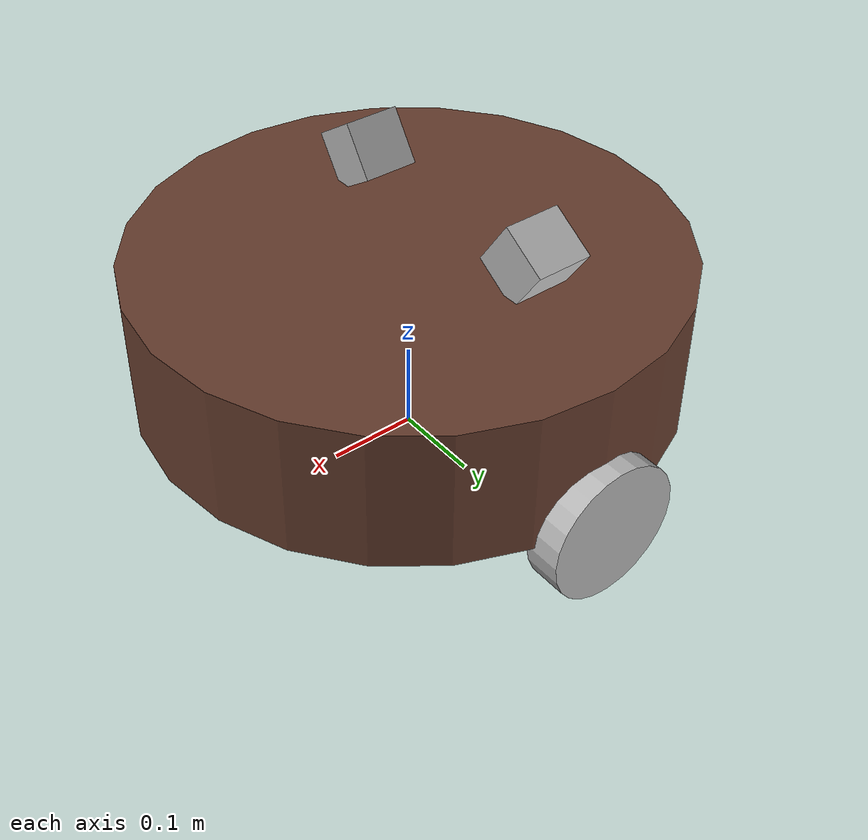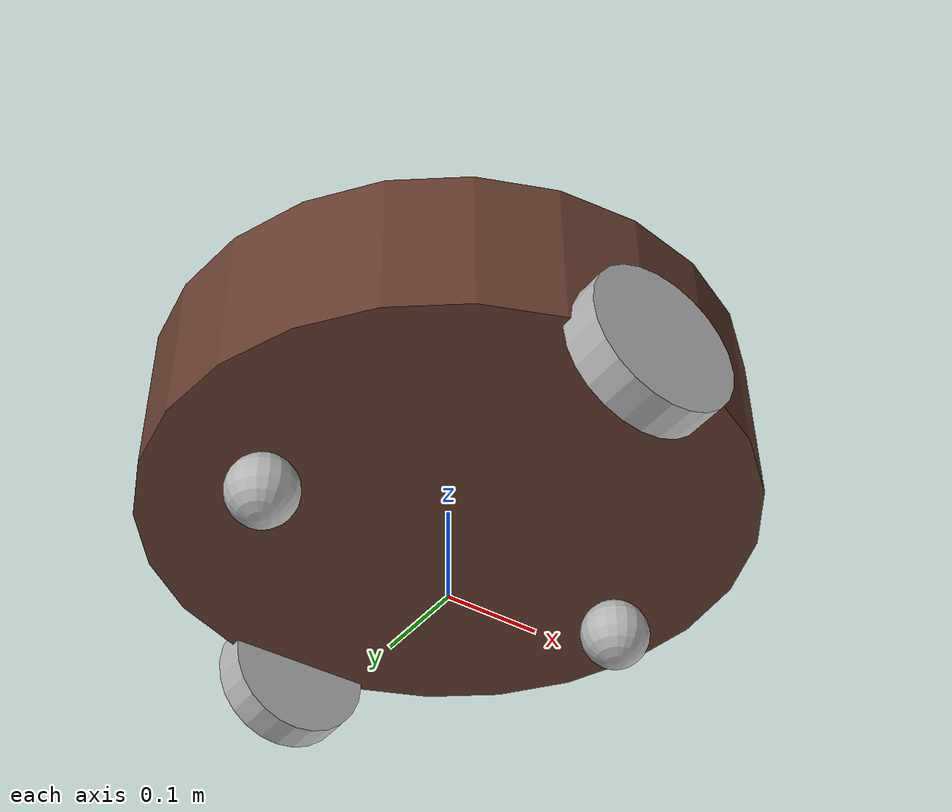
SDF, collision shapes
<?xml version="1.0"?>
<sdf version="1.7">
  <model name="sentry">
    <self_collide>false</self_collide>

    <link name="base_link">
      <pose>0 0 0.16 0 0 0</pose>
      <inertial>
        <mass>35.0</mass>
        <inertia><ixx>0.904167</ixx><iyy>0.904167</iyy><izz>1.575</izz></inertia>
      </inertial>
      <collision name="base_collision">
        <geometry><cylinder><radius>0.3</radius><length>0.16</length></cylinder></geometry>
        <surface>
          <friction><ode><mu>0.8</mu><mu2>0.8</mu2></ode></friction>
          <contact><ode><kp>1000000</kp><kd>100</kd></ode></contact>
        </surface>
      </collision>
      <visual name="base_visual">
        <geometry><cylinder><radius>0.3</radius><length>0.16</length></cylinder></geometry>
        <material><ambient>0.26 0.18 0.14 1</ambient><diffuse>0.40 0.24 0.18 1</diffuse></material>
      </visual>
    </link>

    <link name="left_wheel">
      <pose>0 0.30 0.076 -1.57079632679 0 0</pose>
      <inertial><mass>0.8</mass><inertia><ixx>0.001262</ixx><iyy>0.001262</iyy><izz>0.002310</izz></inertia></inertial>
      <collision name="collision">
        <geometry><cylinder><radius>0.076</radius><length>0.04</length></cylinder></geometry>
        <surface><friction><ode><mu>1.2</mu><mu2>1.2</mu2></ode></friction></surface>
      </collision>
      <visual name="visual"><geometry><cylinder><radius>0.076</radius><length>0.04</length></cylinder></geometry></visual>
    </link>
    <link name="right_wheel">
      <pose>0 -0.30 0.076 -1.57079632679 0 0</pose>
      <inertial><mass>0.8</mass><inertia><ixx>0.001262</ixx><iyy>0.001262</iyy><izz>0.002310</izz></inertia></inertial>
      <collision name="collision">
        <geometry><cylinder><radius>0.076</radius><length>0.04</length></cylinder></geometry>
        <surface><friction><ode><mu>1.2</mu><mu2>1.2</mu2></ode></friction></surface>
      </collision>
      <visual name="visual"><geometry><cylinder><radius>0.076</radius><length>0.04</length></cylinder></geometry></visual>
    </link>
    <joint name="left_joint" type="revolute">
      <parent>base_link</parent><child>left_wheel</child>
      <axis><xyz>0 0 1</xyz><limit><effort>50</effort><velocity>60</velocity></limit><dynamics><damping>0.05</damping></dynamics></axis>
    </joint>
    <joint name="right_joint" type="revolute">
      <parent>base_link</parent><child>right_wheel</child>
      <axis><xyz>0 0 1</xyz><limit><effort>50</effort><velocity>60</velocity></limit><dynamics><damping>0.05</damping></dynamics></axis>
    </joint>

    <link name="front_caster_ball">
      <pose>0.20 0 0.035 0 0 0</pose>
      <inertial><mass>0.125</mass><inertia><ixx>0.0000613</ixx><iyy>0.0000613</iyy><izz>0.0000613</izz></inertia></inertial>
      <collision name="collision">
        <geometry><sphere><radius>0.035</radius></sphere></geometry>
        <surface><friction><ode><mu>0.05</mu><mu2>0.05</mu2></ode></friction></surface>
      </collision>
      <visual name="visual"><geometry><sphere><radius>0.035</radius></sphere></geometry></visual>
    </link>
    <joint name="front_caster_joint" type="ball"><parent>base_link</parent><child>front_caster_ball</child></joint>
    <link name="rear_caster_ball">
      <pose>-0.20 0 0.035 0 0 0</pose>
      <inertial><mass>0.125</mass><inertia><ixx>0.0000613</ixx><iyy>0.0000613</iyy><izz>0.0000613</izz></inertia></inertial>
      <collision name="collision">
        <geometry><sphere><radius>0.035</radius></sphere></geometry>
        <surface><friction><ode><mu>0.05</mu><mu2>0.05</mu2></ode></friction></surface>
      </collision>
      <visual name="visual"><geometry><sphere><radius>0.035</radius></sphere></geometry></visual>
    </link>
    <joint name="rear_caster_joint" type="ball"><parent>base_link</parent><child>rear_caster_ball</child></joint>

    <!-- Level common LiDAR/IMU frame used by Point-LIO after both sensors are fused. -->
    <link name="sim_lidar">
      <pose>0 -0.2 0.3 0 0 0</pose>
      <inertial><mass>0.01</mass><inertia><ixx>0.000001</ixx><iyy>0.000001</iyy><izz>0.000001</izz></inertia></inertial>
      <sensor name="sim_imu" type="imu"><topic>/sim/imu</topic><update_rate>200</update_rate><always_on>true</always_on><gz_frame_id>sim_lidar</gz_frame_id></sensor>
    </link>
    <joint name="sim_lidar_joint" type="fixed"><parent>base_link</parent><child>sim_lidar</child></joint>

    <link name="sim_lidar_left">
      <pose>-0.0496 0.136 0.274965449328 -0.5835987756 0 0</pose>
      <inertial><mass>0.265</mass><inertia><ixx>0.000173</ixx><iyy>0.000173</iyy><izz>0.000187</izz></inertia></inertial>
      <collision name="collision"><geometry><box><size>0.065 0.060 0.065</size></box></geometry></collision>
      <visual name="visual"><pose>0 0 0 0 0 3.14159265359</pose><geometry><mesh><uri>model://mid360/meshes/mid360.dae</uri></mesh></geometry></visual>
      <sensor name="sim_lidar_left_front" type="gpu_lidar">
        <pose>0 0 0.03 0 0 0</pose>
        <topic>/sim/lidar/left/front</topic><update_rate>10</update_rate><always_on>true</always_on><visualize>false</visualize>
        <gz_frame_id>sim_lidar_left</gz_frame_id>
        <lidar>
          <scan><horizontal><samples>360</samples><resolution>1</resolution><min_angle>-1.57079632679</min_angle><max_angle>1.57079632679</max_angle></horizontal><vertical><samples>120</samples><resolution>1</resolution><min_angle>-0.1274090354</min_angle><max_angle>0.9128076904</max_angle></vertical></scan>
          <range><min>0.10</min><max>40.0</max><resolution>0.01</resolution></range>
          <noise><type>gaussian</type><mean>0.0</mean><stddev>0.0</stddev></noise>
        </lidar>
      </sensor>
      <sensor name="sim_lidar_left_rear" type="gpu_lidar">
        <pose>0 0 0.03 0 0 3.14159265359</pose>
        <topic>/sim/lidar/left/rear</topic><update_rate>10</update_rate><always_on>true</always_on><visualize>false</visualize>
        <gz_frame_id>sim_lidar_left</gz_frame_id>
        <lidar>
          <scan><horizontal><samples>360</samples><resolution>1</resolution><min_angle>-1.57079632679</min_angle><max_angle>1.57079632679</max_angle></horizontal><vertical><samples>120</samples><resolution>1</resolution><min_angle>-0.1274090354</min_angle><max_angle>0.9128076904</max_angle></vertical></scan>
          <range><min>0.10</min><max>40.0</max><resolution>0.01</resolution></range>
          <noise><type>gaussian</type><mean>0.0</mean><stddev>0.0</stddev></noise>
        </lidar>
      </sensor>
    </link>
    <joint name="sim_lidar_left_joint" type="fixed"><parent>base_link</parent><child>sim_lidar_left</child></joint>

    <link name="sim_lidar_right">
      <pose>-0.0496 -0.136 0.274965449328 0.5835987756 0 0</pose>
      <inertial><mass>0.265</mass><inertia><ixx>0.000173</ixx><iyy>0.000173</iyy><izz>0.000187</izz></inertia></inertial>
      <collision name="collision"><geometry><box><size>0.065 0.060 0.065</size></box></geometry></collision>
      <visual name="visual"><pose>0 0 0 0 0 3.14159265359</pose><geometry><mesh><uri>model://mid360/meshes/mid360.dae</uri></mesh></geometry></visual>
      <sensor name="sim_lidar_right_front" type="gpu_lidar">
        <pose>0 0 0.03 0 0 0</pose>
        <topic>/sim/lidar/right/front</topic><update_rate>10</update_rate><always_on>true</always_on><visualize>false</visualize>
        <gz_frame_id>sim_lidar_right</gz_frame_id>
        <lidar>
          <scan><horizontal><samples>360</samples><resolution>1</resolution><min_angle>-1.57079632679</min_angle><max_angle>1.57079632679</max_angle></horizontal><vertical><samples>120</samples><resolution>1</resolution><min_angle>-0.1274090354</min_angle><max_angle>0.9128076904</max_angle></vertical></scan>
          <range><min>0.10</min><max>40.0</max><resolution>0.01</resolution></range>
          <noise><type>gaussian</type><mean>0.0</mean><stddev>0.0</stddev></noise>
        </lidar>
      </sensor>
      <sensor name="sim_lidar_right_rear" type="gpu_lidar">
        <pose>0 0 0.03 0 0 3.14159265359</pose>
        <topic>/sim/lidar/right/rear</topic><update_rate>10</update_rate><always_on>true</always_on><visualize>false</visualize>
        <gz_frame_id>sim_lidar_right</gz_frame_id>
        <lidar>
          <scan><horizontal><samples>360</samples><resolution>1</resolution><min_angle>-1.57079632679</min_angle><max_angle>1.57079632679</max_angle></horizontal><vertical><samples>120</samples><resolution>1</resolution><min_angle>-0.1274090354</min_angle><max_angle>0.9128076904</max_angle></vertical></scan>
          <range><min>0.10</min><max>40.0</max><resolution>0.01</resolution></range>
          <noise><type>gaussian</type><mean>0.0</mean><stddev>0.0</stddev></noise>
        </lidar>
      </sensor>
    </link>
    <joint name="sim_lidar_right_joint" type="fixed"><parent>base_link</parent><child>sim_lidar_right</child></joint>

    <plugin filename="gz-sim-diff-drive-system" name="gz::sim::systems::DiffDrive">
      <left_joint>left_joint</left_joint><right_joint>right_joint</right_joint>
      <wheel_separation>0.60</wheel_separation><wheel_radius>0.076</wheel_radius>
      <topic>/sentry/cmd_vel</topic><odom_topic>/sentry/wheel_odometry</odom_topic>
      <frame_id>sentry/odom</frame_id><child_frame_id>sentry/base_link</child_frame_id>
      <odom_publish_frequency>100</odom_publish_frequency>
      <min_acceleration>-4.0</min_acceleration><max_acceleration>4.0</max_acceleration>
      <min_velocity>-3.0</min_velocity><max_velocity>3.0</max_velocity>
    </plugin>
    <plugin filename="gz-sim-odometry-publisher-system" name="gz::sim::systems::OdometryPublisher">
      <odom_frame>sentry/odom</odom_frame><robot_base_frame>sentry/base_link</robot_base_frame>
      <dimensions>3</dimensions><odom_publish_frequency>100</odom_publish_frequency>
      <odom_topic>/sentry/ground_truth_odometry</odom_topic><tf_topic>/sentry/ground_truth_tf</tf_topic>
    </plugin>
  </model>
</sdf>
